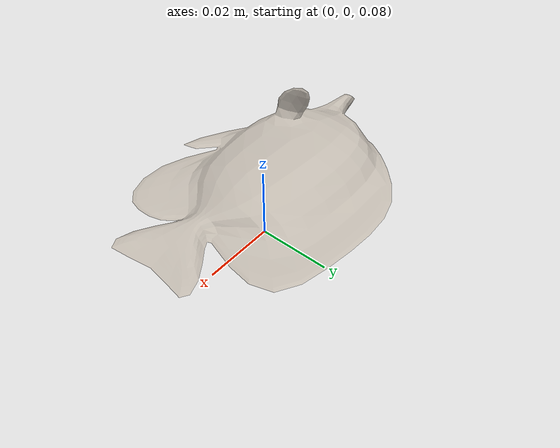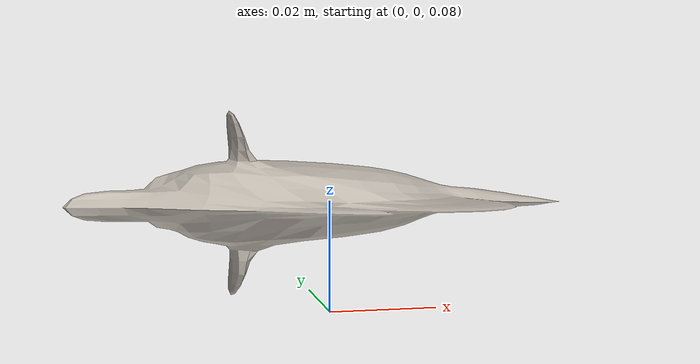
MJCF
<mujoco model="fish_yb">
    <asset>
        <mesh name="fish_yb_mesh" file="asset/fish_yb.obj" scale="2 2 2"/>
        <texture name="fish_yb_tex" type="2d" file="asset/fish_yb.png"/>
        <material name="fish_yb_mat" texture="fish_yb_tex" specular="0.3"/>
    </asset>
    <worldbody>
        <body name="fish_yb_obj" pos="0 0 0.1" euler="0 90 0">
        <freejoint/>
        <geom type="mesh" mesh="fish_yb_mesh" material="fish_yb_mat" mass="0.2" friction="3 10.0 10.0" solimp="0.95 0.99 0.001" solref="0.015 1" margin="0.005" group="2"/>
    </body>
    </worldbody>
</mujoco>
